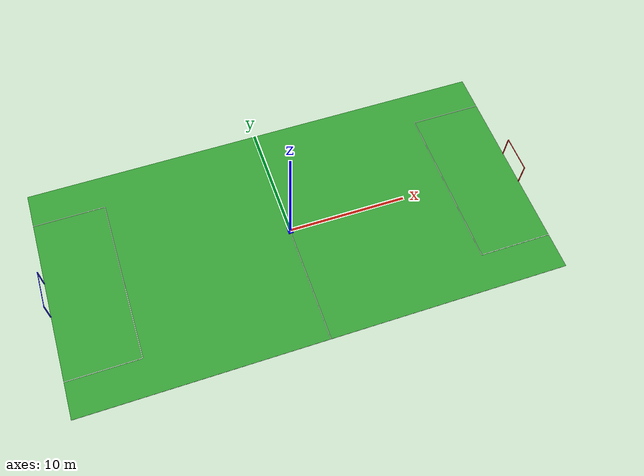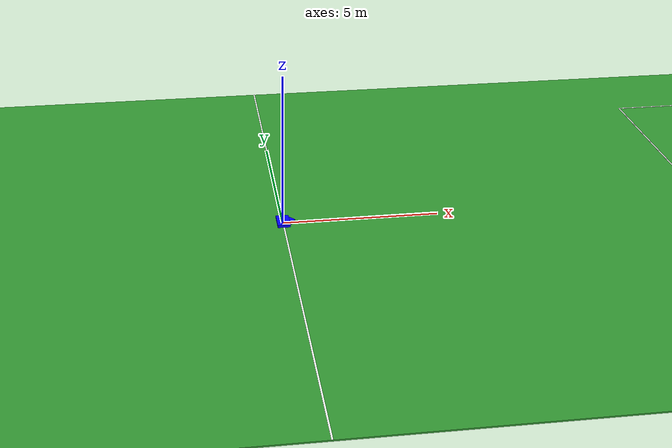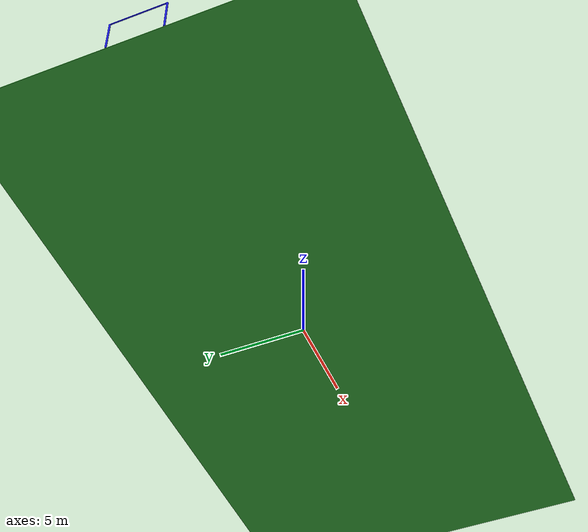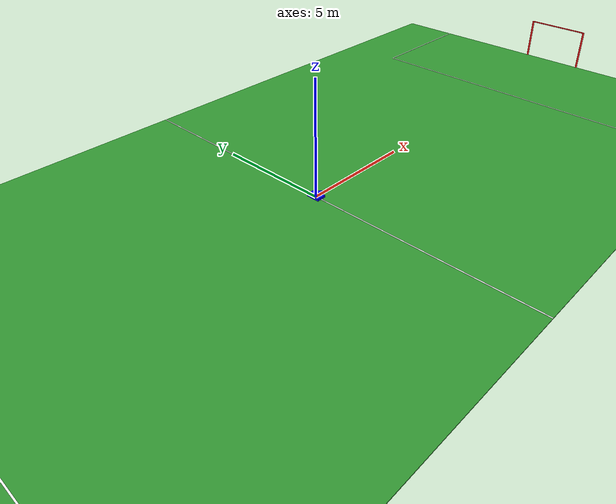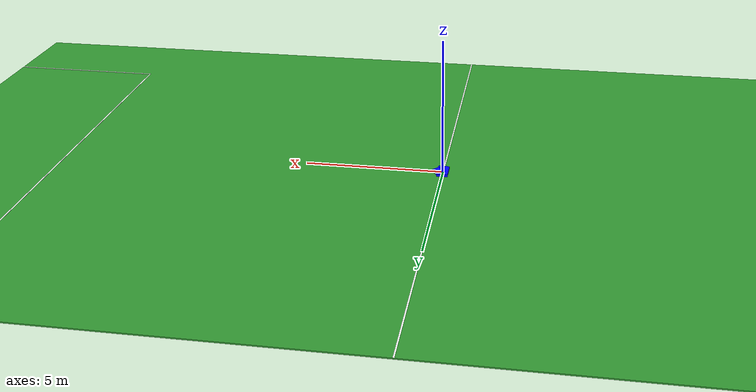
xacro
<?xml version="1.0"?>
<robot name="multi_robots" xmlns:xacro="http://www.ros.org/wiki/xacro">

  <!-- Root link -->
  <link name="world"/>

  <!-- Macro definition -->
  <xacro:macro name="robot_body" params="name color">

    <xacro:property name="rgba"
                    value="${'0 0 1 1' if color == 'blue' else '1 0 0 1'}"/>

    <!-- Base link -->
    <link name="${name}">
      <visual>
        <origin xyz="0 0 0.05"/>
        <geometry>
          <box size="0.4 0.6 0.1"/>
        </geometry>
        <material name="${name}_mat">
          <color rgba="${rgba}"/>
        </material>
      </visual>
    </link>

    <!-- Front extension -->
    <link name="${name}_front">
      <visual>
        <origin xyz="0.18 0 0.05" rpy="0 0 0.785398"/>
        <geometry>
          <box size="0.3 0.3 0.1"/>
        </geometry>
        <material name="${name}_mat"/>
      </visual>
    </link>

    <joint name="${name}_front_joint" type="fixed">
      <parent link="${name}"/>
      <child link="${name}_front"/>
    </joint>

    <!-- Attach robot to world -->
    <joint name="${name}_world_joint" type="fixed">
      <parent link="world"/>
      <child link="${name}"/>
    </joint>

  </xacro:macro>

  <!-- Instantiate robots -->
  <xacro:robot_body name="blue_0" color="blue"/>
  <xacro:robot_body name="blue_1" color="blue"/>
  <xacro:robot_body name="blue_2" color="blue"/>

  <xacro:robot_body name="red_0" color="red"/>
  <xacro:robot_body name="red_1" color="red"/>
  <xacro:robot_body name="red_2" color="red"/>

  <!-- ===================== TERRAIN ===================== -->
  <link name="field_floor">
    <visual>
      <origin xyz="0 0 0" rpy="0 0 0"/>
      <geometry>
        <box size="40.0 20.0 0.05"/>
      </geometry>
      <material name="green">
        <color rgba="0.2 0.6 0.2 1.0"/>
      </material>
    </visual>
  </link>
  <joint name="field_floor_joint" type="fixed">
    <parent link="world"/>
    <child link="field_floor"/>
    <origin xyz="0 0 -0.025" rpy="0 0 0"/>
  </joint>

  <!-- ===================== LIGNE CENTRALE ===================== -->
  <link name="center_line">
    <visual>
      <origin xyz="0 0 0" rpy="0 0 0"/>
      <geometry>
        <box size="0.05 20.0 0.01"/>
      </geometry>
      <material name="white">
        <color rgba="1.0 1.0 1.0 1.0"/>
      </material>
    </visual>
  </link>
  <joint name="center_line_joint" type="fixed">
    <parent link="world"/>
    <child link="center_line"/>
    <origin xyz="0 0 0.001" rpy="0 0 0"/>
  </joint>

  <!-- ===================== BUT BLEU (gauche, x = -20) ===================== -->
  <link name="blue_goal_post_left">
    <visual>
      <origin xyz="0 0 0" rpy="0 0 0"/>
      <geometry>
        <cylinder radius="0.05" length="2.0"/>
      </geometry>
      <material name="blue_goal">
        <color rgba="0.1 0.1 0.9 1.0"/>
      </material>
    </visual>
  </link>
  <joint name="blue_goal_post_left_joint" type="fixed">
    <parent link="world"/>
    <child link="blue_goal_post_left"/>
    <origin xyz="-20.0 -1.5 1.0" rpy="0 0 0"/>
  </joint>

  <link name="blue_goal_post_right">
    <visual>
      <origin xyz="0 0 0" rpy="0 0 0"/>
      <geometry>
        <cylinder radius="0.05" length="2.0"/>
      </geometry>
      <material name="blue_goal"/>
    </visual>
  </link>
  <joint name="blue_goal_post_right_joint" type="fixed">
    <parent link="world"/>
    <child link="blue_goal_post_right"/>
    <origin xyz="-20.0 1.5 1.0" rpy="0 0 0"/>
  </joint>

  <link name="blue_goal_crossbar">
    <visual>
      <origin xyz="0 0 0" rpy="0 0 0"/>
      <geometry>
        <box size="0.05 3.0 0.05"/>
      </geometry>
      <material name="blue_goal"/>
    </visual>
  </link>
  <joint name="blue_goal_crossbar_joint" type="fixed">
    <parent link="world"/>
    <child link="blue_goal_crossbar"/>
    <origin xyz="-20.0 0.0 2.0" rpy="0 0 0"/>
  </joint>

  <!-- ===================== BUT ROUGE (droite, x = +20) ===================== -->
  <link name="red_goal_post_left">
    <visual>
      <origin xyz="0 0 0" rpy="0 0 0"/>
      <geometry>
        <cylinder radius="0.05" length="2.0"/>
      </geometry>
      <material name="red_goal">
        <color rgba="0.9 0.1 0.1 1.0"/>
      </material>
    </visual>
  </link>
  <joint name="red_goal_post_left_joint" type="fixed">
    <parent link="world"/>
    <child link="red_goal_post_left"/>
    <origin xyz="20.0 -1.5 1.0" rpy="0 0 0"/>
  </joint>

  <link name="red_goal_post_right">
    <visual>
      <origin xyz="0 0 0" rpy="0 0 0"/>
      <geometry>
        <cylinder radius="0.05" length="2.0"/>
      </geometry>
      <material name="red_goal"/>
    </visual>
  </link>
  <joint name="red_goal_post_right_joint" type="fixed">
    <parent link="world"/>
    <child link="red_goal_post_right"/>
    <origin xyz="20.0 1.5 1.0" rpy="0 0 0"/>
  </joint>

  <link name="red_goal_crossbar">
    <visual>
      <origin xyz="0 0 0" rpy="0 0 0"/>
      <geometry>
        <box size="0.05 3.0 0.05"/>
      </geometry>
      <material name="red_goal"/>
    </visual>
  </link>
  <joint name="red_goal_crossbar_joint" type="fixed">
    <parent link="world"/>
    <child link="red_goal_crossbar"/>
    <origin xyz="20.0 0.0 2.0" rpy="0 0 0"/>
  </joint>

  <!-- ===================== ZONE DE BUT BLEUE (x=-20) ===================== -->
  <!-- Ligne droite devant le but : de y=-1.5 à y=1.5 à x=-14 -->
  <link name="blue_zone_front">
    <visual>
      <origin xyz="0 0 0" rpy="0 0 0"/>
      <geometry>
        <box size="0.05 14.0 0.01"/>
      </geometry>
      <material name="white"/>
    </visual>
  </link>
  <joint name="blue_zone_front_joint" type="fixed">
    <parent link="world"/>
    <child link="blue_zone_front"/>
    <origin xyz="-14.0 0.0 0.001" rpy="0 0 0"/>
  </joint>

  <!-- Ligne latérale gauche zone bleue -->
  <link name="blue_zone_side_left">
    <visual>
      <origin xyz="0 0 0" rpy="0 0 0"/>
      <geometry>
        <box size="6.0 0.05 0.01"/>
      </geometry>
      <material name="white"/>
    </visual>
  </link>
  <joint name="blue_zone_side_left_joint" type="fixed">
    <parent link="world"/>
    <child link="blue_zone_side_left"/>
    <origin xyz="-17.0 -7.0 0.001" rpy="0 0 0"/>
  </joint>

  <!-- Ligne latérale droite zone bleue -->
  <link name="blue_zone_side_right">
    <visual>
      <origin xyz="0 0 0" rpy="0 0 0"/>
      <geometry>
        <box size="6.0 0.05 0.01"/>
      </geometry>
      <material name="white"/>
    </visual>
  </link>
  <joint name="blue_zone_side_right_joint" type="fixed">
    <parent link="world"/>
    <child link="blue_zone_side_right"/>
    <origin xyz="-17.0 7.0 0.001" rpy="0 0 0"/>
  </joint>

  <!-- ===================== ZONE DE BUT ROUGE (x=+20) ===================== -->
  <link name="red_zone_front">
    <visual>
      <origin xyz="0 0 0" rpy="0 0 0"/>
      <geometry>
        <box size="0.05 14.0 0.01"/>
      </geometry>
      <material name="white"/>
    </visual>
  </link>
  <joint name="red_zone_front_joint" type="fixed">
    <parent link="world"/>
    <child link="red_zone_front"/>
    <origin xyz="14.0 0.0 0.001" rpy="0 0 0"/>
  </joint>

  <link name="red_zone_side_left">
    <visual>
      <origin xyz="0 0 0" rpy="0 0 0"/>
      <geometry>
        <box size="6.0 0.05 0.01"/>
      </geometry>
      <material name="white"/>
    </visual>
  </link>
  <joint name="red_zone_side_left_joint" type="fixed">
    <parent link="world"/>
    <child link="red_zone_side_left"/>
    <origin xyz="17.0 -7.0 0.001" rpy="0 0 0"/>
  </joint>

  <link name="red_zone_side_right">
    <visual>
      <origin xyz="0 0 0" rpy="0 0 0"/>
      <geometry>
        <box size="6.0 0.05 0.01"/>
      </geometry>
      <material name="white"/>
    </visual>
  </link>
  <joint name="red_zone_side_right_joint" type="fixed">
    <parent link="world"/>
    <child link="red_zone_side_right"/>
    <origin xyz="17.0 7.0 0.001" rpy="0 0 0"/>
  </joint>

  <!-- ===================== BALLE ===================== -->
  <link name="ball">
    <visual>
      <origin xyz="0 0 0" rpy="0 0 0"/>
      <geometry>
        <sphere radius="0.1"/>
      </geometry>
      <material name="orange">
        <color rgba="1.0 0.5 0.0 1.0"/>
      </material>
    </visual>
  </link>
  <joint name="ball_joint" type="fixed">
    <parent link="world"/>
    <child link="ball"/>
  </joint>

</robot>
